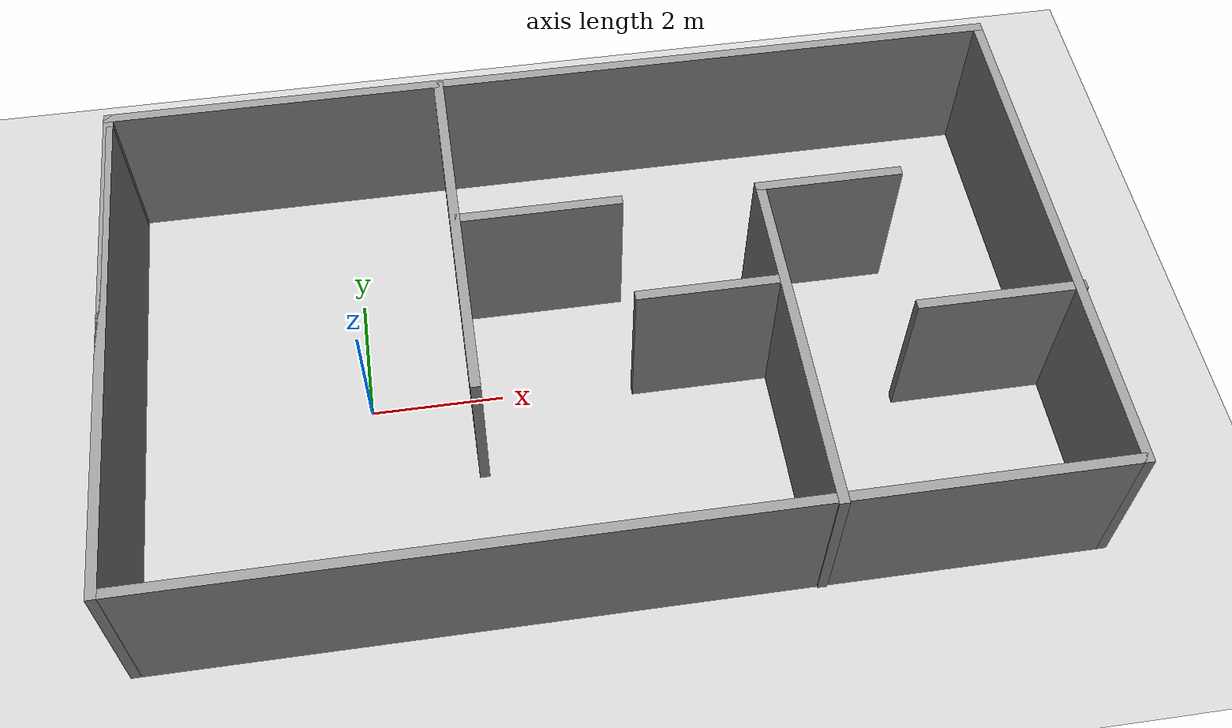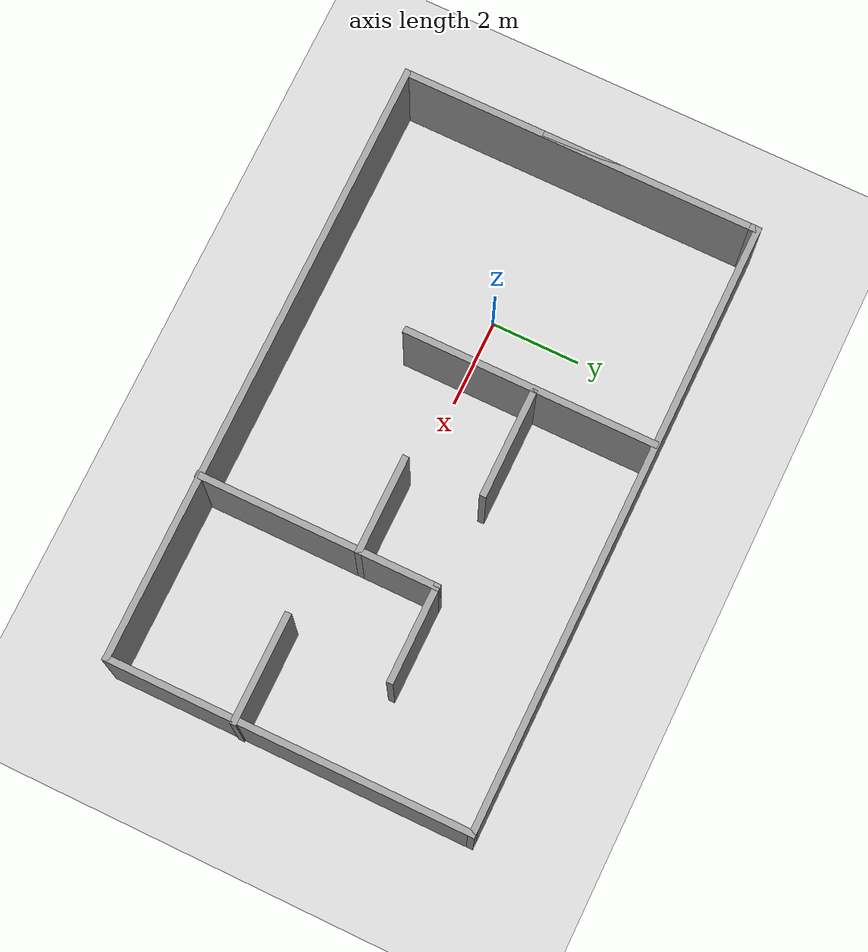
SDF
<sdf version="1.7">
 <world name="default">
  <light name="sun" type="directional">
   <pose>0 0 10 0 -0 0</pose>
   <diffuse>0.8 0.8 0.8 1</diffuse>
   <specular>0.2 0.2 0.2 1</specular>
   <attenuation>
    <range>1000</range>
    <constant>0.9</constant>
    <linear>0.01</linear>
    <quadratic>0.001</quadratic>
   </attenuation>
   <direction>-0.5 0.1 -0.9</direction>
   <spot><inner_angle>0</inner_angle><outer_angle>0</outer_angle><falloff>0</falloff></spot>
  </light>
  <model name="ground_plane">
   <static>1</static>
   <link name="link">
    <collision name="collision">
     <geometry><plane><normal>0 0 1</normal><size>100 100</size></plane></geometry>
     <surface>
      <contact><collide_bitmask>65535</collide_bitmask></contact>
      <friction><ode><mu>100</mu><mu2>50</mu2></ode></friction>
     </surface>
    </collision>
    <visual name="visual">
     <cast_shadows>0</cast_shadows>
     <geometry><plane><normal>0 0 1</normal><size>100 100</size></plane></geometry>
     <material>
      <script><uri>file://media/materials/scripts/gazebo.material</uri><name>Gazebo/Grey</name></script>
     </material>
    </visual>
   </link>
  </model>
  <gravity>0 0 -9.8</gravity>
  <magnetic_field>6e-06 2.3e-05 -4.2e-05</magnetic_field>
  <atmosphere type="adiabatic"/>
  <physics type="ode">
   <max_step_size>0.001</max_step_size>
   <real_time_factor>1</real_time_factor>
   <real_time_update_rate>1000</real_time_update_rate>
  </physics>
  <scene><ambient>0.4 0.4 0.4 1</ambient><background>0.7 0.7 0.7 1</background><shadows>1</shadows></scene>
  <spherical_coordinates>
   <surface_model>EARTH_WGS84</surface_model>
   <latitude_deg>0</latitude_deg>
   <longitude_deg>0</longitude_deg>
   <elevation>0</elevation>
   <heading_deg>0</heading_deg>
  </spherical_coordinates>
  <model name="Untitled">
   <pose>3.41453 0.299343 0 0 -0 0</pose>
   <link name="Wall_11">
    <collision name="Wall_11_Collision">
     <geometry><box><size>5.75 0.15 2.5</size></box></geometry>
     <pose>0 0 1.25 0 -0 0</pose>
    </collision>
    <visual name="Wall_11_Visual">
     <pose>0 0 1.25 0 -0 0</pose>
     <geometry><box><size>5.75 0.15 2.5</size></box></geometry>
     <material>
      <script><uri>file://media/materials/scripts/gazebo.material</uri><name>Gazebo/Grey</name></script>
      <ambient>1 1 1 1</ambient>
     </material>
     <meta><layer>0</layer></meta>
    </visual>
    <pose>-1.82863 1.22501 0 0 -0 -1.5708</pose>
   </link>
   <link name="Wall_15">
    <collision name="Wall_15_Collision">
     <geometry><box><size>5.5 0.15 2.5</size></box></geometry>
     <pose>0 0 1.25 0 -0 0</pose>
    </collision>
    <visual name="Wall_15_Visual">
     <pose>0 0 1.25 0 -0 0</pose>
     <geometry><box><size>5.5 0.15 2.5</size></box></geometry>
     <material>
      <script><uri>file://media/materials/scripts/gazebo.material</uri><name>Gazebo/Grey</name></script>
      <ambient>1 1 1 1</ambient>
     </material>
     <meta><layer>0</layer></meta>
    </visual>
    <pose>2.75726 -1.38565 0 0 -0 1.5708</pose>
   </link>
   <link name="Wall_17">
    <collision name="Wall_17_Collision">
     <geometry><box><size>2.25 0.15 2.5</size></box></geometry>
     <pose>0 0 1.25 0 -0 0</pose>
    </collision>
    <visual name="Wall_17_Visual">
     <pose>0 0 1.25 0 -0 0</pose>
     <geometry><box><size>2.25 0.15 2.5</size></box></geometry>
     <material>
      <script><uri>file://media/materials/scripts/gazebo.material</uri><name>Gazebo/Grey</name></script>
      <ambient>1 1 1 1</ambient>
     </material>
     <meta><layer>0</layer></meta>
    </visual>
    <pose>1.70727 -0.440204 0 0 -0 3.14159</pose>
   </link>
   <link name="Wall_19">
    <collision name="Wall_19_Collision">
     <geometry><box><size>2.5 0.15 2.5</size></box></geometry>
     <pose>0 0 1.25 0 -0 0</pose>
    </collision>
    <visual name="Wall_19_Visual">
     <pose>0 0 1.25 0 -0 0</pose>
     <geometry><box><size>2.5 0.15 2.5</size></box></geometry>
     <material>
      <script><uri>file://media/materials/scripts/gazebo.material</uri><name>Gazebo/Grey</name></script>
      <ambient>1 1 1 1</ambient>
     </material>
     <meta><layer>0</layer></meta>
    </visual>
    <pose>-0.573175 1.32979 0 0 -0 0</pose>
   </link>
   <link name="Wall_21">
    <collision name="Wall_21_Collision">
     <geometry><box><size>2.25 0.15 2.5</size></box></geometry>
     <pose>0 0 1.25 0 -0 0</pose>
    </collision>
    <visual name="Wall_21_Visual">
     <pose>0 0 1.25 0 -0 0</pose>
     <geometry><box><size>2.25 0.15 2.5</size></box></geometry>
     <material>
      <script><uri>file://media/materials/scripts/gazebo.material</uri><name>Gazebo/Grey</name></script>
      <ambient>1 1 1 1</ambient>
     </material>
     <meta><layer>0</layer></meta>
    </visual>
    <pose>3.80727 1.28935 0 0 -0 0</pose>
   </link>
   <link name="Wall_23">
    <collision name="Wall_23_Collision">
     <geometry><box><size>2.5 0.15 2.5</size></box></geometry>
     <pose>0 0 1.25 0 -0 0</pose>
    </collision>
    <visual name="Wall_23_Visual">
     <pose>0 0 1.25 0 -0 0</pose>
     <geometry><box><size>2.5 0.15 2.5</size></box></geometry>
     <material>
      <script><uri>file://media/materials/scripts/gazebo.material</uri><name>Gazebo/Grey</name></script>
      <ambient>1 1 1 1</ambient>
     </material>
     <meta><layer>0</layer></meta>
    </visual>
    <pose>5.76589 -1.16429 0 0 -0 3.14159</pose>
   </link>
   <link name="Wall_3">
    <collision name="Wall_3_Collision">
     <geometry><box><size>8 0.15 2.5</size></box></geometry>
     <pose>0 0 1.25 0 -0 0</pose>
    </collision>
    <visual name="Wall_3_Visual">
     <pose>0 0 1.25 0 -0 0</pose>
     <geometry><box><size>8 0.15 2.5</size></box></geometry>
     <material>
      <script><uri>file://media/materials/scripts/gazebo.material</uri><name>Gazebo/Grey</name></script>
      <ambient>1 1 1 1</ambient>
     </material>
     <meta><layer>0</layer></meta>
    </visual>
    <pose>-6.94089 -0.114353 0 0 -0 -1.5708</pose>
   </link>
   <link name="Wall_4">
    <collision name="Wall_4_Collision">
     <geometry><box><size>14 0.15 2.5</size></box></geometry>
     <pose>0 0 1.25 0 -0 0</pose>
    </collision>
    <visual name="Wall_4_Visual">
     <pose>0 0 1.25 0 -0 0</pose>
     <geometry><box><size>14 0.15 2.5</size></box></geometry>
     <material>
      <script><uri>file://media/materials/scripts/gazebo.material</uri><name>Gazebo/Grey</name></script>
      <ambient>1 1 1 1</ambient>
     </material>
     <meta><layer>0</layer></meta>
    </visual>
    <pose>-0.015888 -4.03935 0 0 -0 0</pose>
   </link>
   <link name="Wall_5">
    <collision name="Wall_5_Collision">
     <geometry><box><size>8.25 0.15 2.5</size></box></geometry>
     <pose>0 0 1.25 0 -0 0</pose>
    </collision>
    <visual name="Wall_5_Visual">
     <pose>0 0 1.25 0 -0 0</pose>
     <geometry><box><size>8.25 0.15 2.5</size></box></geometry>
     <material>
      <script><uri>file://media/materials/scripts/gazebo.material</uri><name>Gazebo/Grey</name></script>
      <ambient>1 1 1 1</ambient>
     </material>
     <meta><layer>0</layer></meta>
    </visual>
    <pose>6.90911 0.010647 0 0 -0 1.5708</pose>
   </link>
   <link name="Wall_6">
    <collision name="Wall_6_Collision">
     <geometry><box><size>14 0.15 2.5</size></box></geometry>
     <pose>0 0 1.25 0 -0 0</pose>
    </collision>
    <visual name="Wall_6_Visual">
     <pose>0 0 1.25 0 -0 0</pose>
     <geometry><box><size>14 0.15 2.5</size></box></geometry>
     <material>
      <script><uri>file://media/materials/scripts/gazebo.material</uri><name>Gazebo/Grey</name></script>
      <ambient>1 1 1 1</ambient>
     </material>
     <meta><layer>0</layer></meta>
    </visual>
    <pose>-0.015888 4.06065 0 0 -0 3.14159</pose>
   </link>
   <link name="Wall_7">
    <collision name="Wall_7_Collision">
     <geometry><box><size>5 0.15 2.5</size></box></geometry>
     <pose>0 0 1.25 0 -0 0</pose>
    </collision>
    <visual name="Wall_7_Visual">
     <pose>0 0 1.25 0 -0 0</pose>
     <geometry><box><size>5 0.15 2.5</size></box></geometry>
     <material>
      <script><uri>file://media/materials/scripts/gazebo.material</uri><name>Gazebo/Grey</name></script>
      <ambient>1 1 1 1</ambient>
     </material>
     <meta><layer>0</layer></meta>
    </visual>
    <pose>-6.94089 1.63565 0 0 -0 -1.5708</pose>
   </link>
   <static>1</static>
  </model>
 </world>
</sdf>
